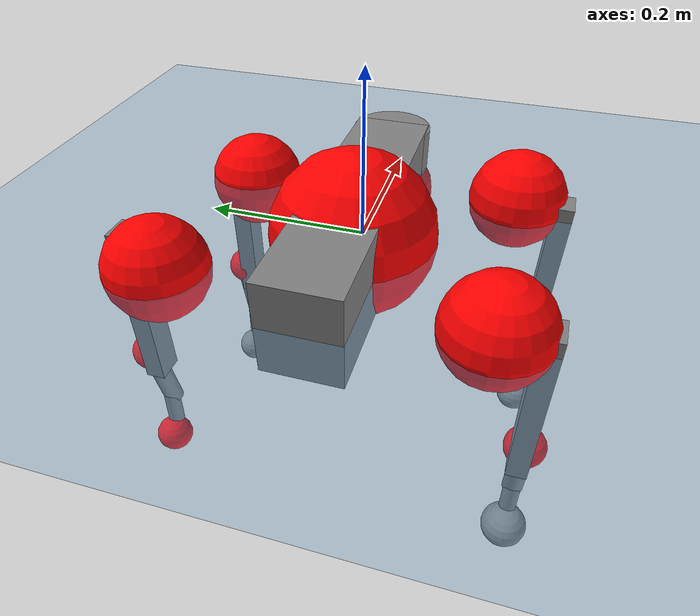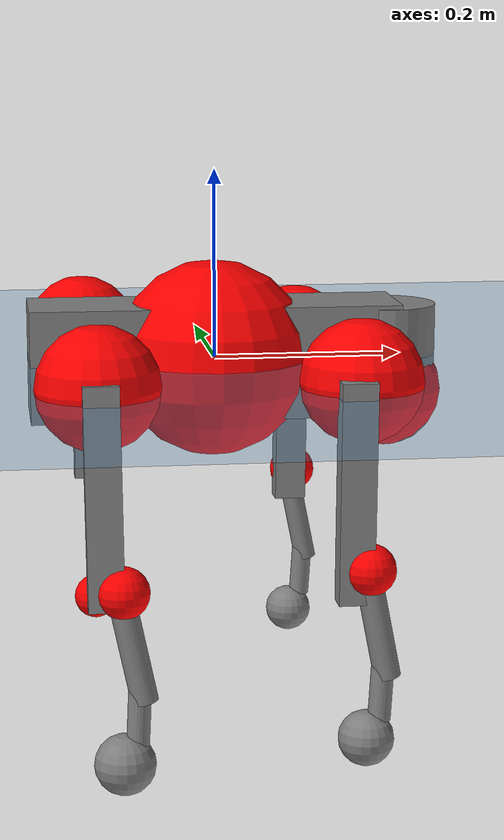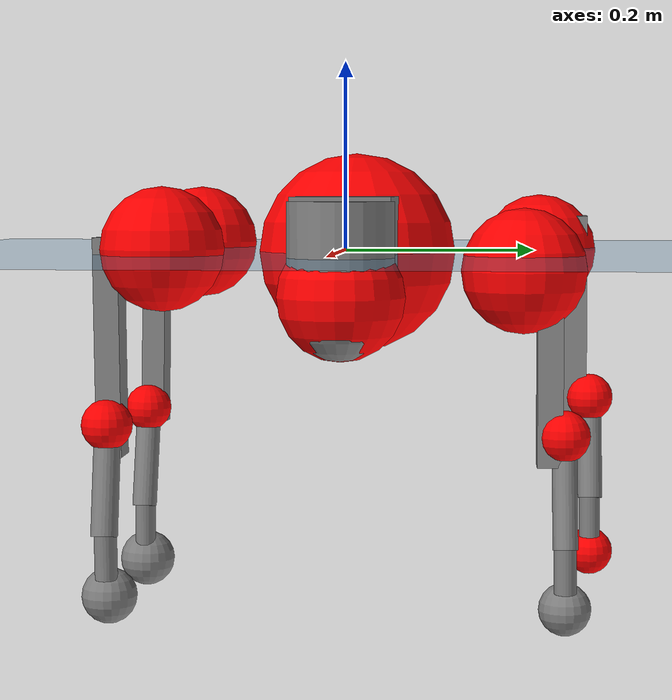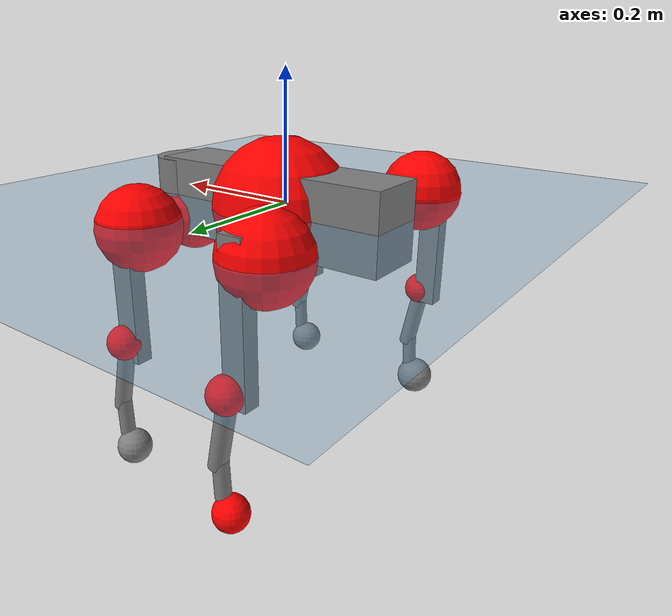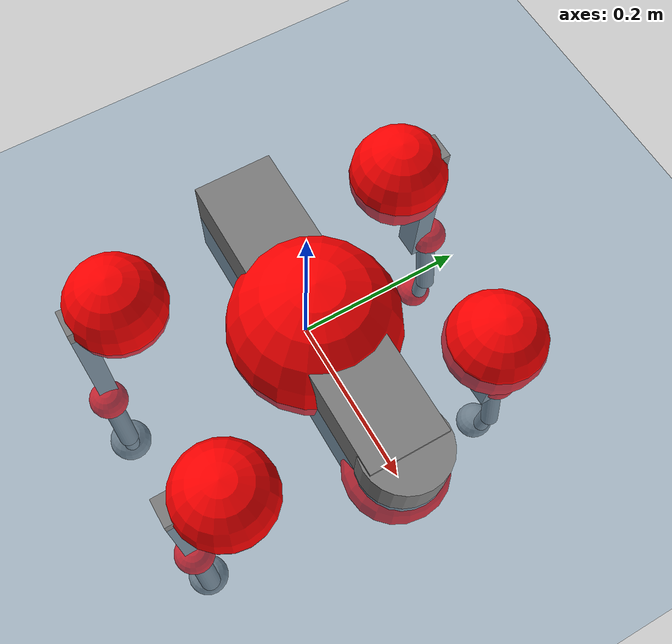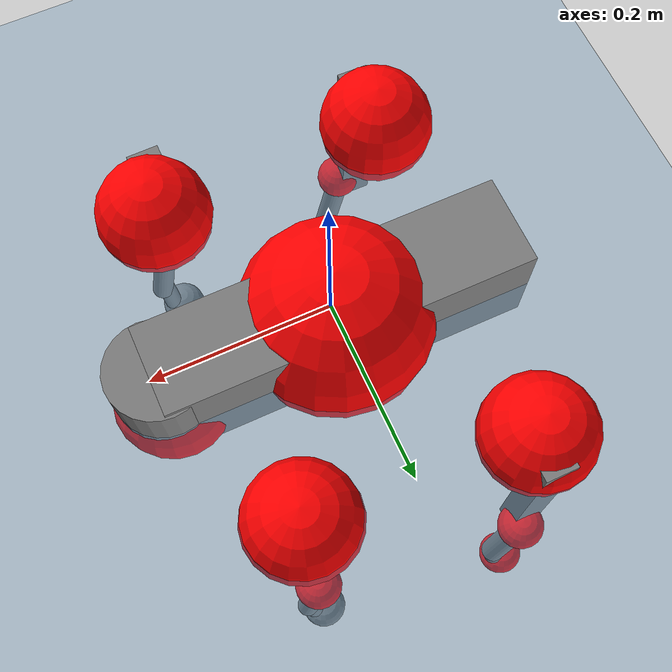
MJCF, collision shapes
<mujoco model="go2">
  <compiler angle="radian" assetdir="assets" balanceinertia="true" inertiafromgeom="false"/>

  <option timestep="0.005" density="1.2" viscosity="2e-05"/>

  <size nkey="1"/>

  <visual>
    <quality shadowsize="8192"/>
    <map shadowclip="0.5"/>
  </visual>

  <default>
    <default class="/">
      <geom contype="0" conaffinity="0" group="1" solref="-1000 -80"/>
      <site size="0.01 0.005 0.005" group="5"/>
      <general forcelimited="true" biastype="affine" gainprm="20" biasprm="0 -20 -0.5"/>
      <default class="go2">
        <joint armature="0.01" damping="0.01" frictionloss="0.2"/>
        <geom condim="1" margin="0.001"/>
        <default class="visual">
          <geom type="mesh" group="2"/>
        </default>
        <default class="collision">
          <geom group="3"/>
          <default class="foot">
            <geom size="0.022 0 0" condim="6" priority="1" friction="0.8 0.02 0.01" solimp="0.015 1 0.022"/>
          </default>
        </default>
        <default class="reward_collision_sphere">
          <geom group="5" rgba="1 0 0 1"/>
        </default>
      </default>
    </default>
  </default>

  <asset>
    <texture type="skybox" colorspace="auto" name="//unnamed_texture_0" builtin="gradient" rgb1="0.95 0.95 0.95" rgb2="0.95 0.95 0.95" width="100" height="600"/>
    <texture type="2d" colorspace="auto" name="texplane" builtin="checker" rgb1="0.345 0.575 0.748" rgb2="0.345 0.575 0.748" markrgb="1 1 1" width="512" height="512"/>
    <material name="MatPlane" class="/" texture="texplane" texuniform="true" texrepeat="2 2" specular="0.9"/>
    <material name="metal" class="/" rgba="0.9 0.95 0.95 1"/>
    <material name="black" class="/" rgba="0 0 0 1"/>
    <material name="white" class="/"/>
    <material name="gray" class="/" rgba="0.671705 0.692426 0.77427 1"/>
    <mesh name="base_0" class="/" file="base_0.obj"/>
    <mesh name="base_1" class="/" file="base_1.obj"/>
    <mesh name="base_2" class="/" file="base_2.obj"/>
    <mesh name="base_3" class="/" file="base_3.obj"/>
    <mesh name="base_4" class="/" file="base_4.obj"/>
    <mesh name="hip_0" class="/" file="hip_0.obj"/>
    <mesh name="hip_1" class="/" file="hip_1.obj"/>
    <mesh name="thigh_0" class="/" file="thigh_0.obj"/>
    <mesh name="thigh_1" class="/" file="thigh_1.obj"/>
    <mesh name="thigh_mirror_0" class="/" file="thigh_mirror_0.obj"/>
    <mesh name="thigh_mirror_1" class="/" file="thigh_mirror_1.obj"/>
    <mesh name="calf_0" class="/" file="calf_0.obj"/>
    <mesh name="calf_1" class="/" file="calf_1.obj"/>
    <mesh name="calf_mirror_0" class="/" file="calf_mirror_0.obj"/>
    <mesh name="calf_mirror_1" class="/" file="calf_mirror_1.obj"/>
    <mesh name="foot" class="/" file="foot.obj"/>
  </asset>

  <worldbody>
    <geom name="floor" class="/" size="100 100 0.125" type="plane" group="0" material="MatPlane"/>
    <light name="toplight_shadow" class="/" pos="0 0 5" dir="0.0990148 0.0990148 -0.990148" type="directional" ambient="0.04 0.04 0.04" diffuse="0.55 0.55 0.55" specular="0.12 0.12 0.12"/>
    <light name="toplight_fill" class="/" pos="0 0 5" dir="0.0990148 0.0990148 -0.990148" type="directional" castshadow="false" ambient="0.04 0.04 0.04" diffuse="0.3 0.3 0.3" specular="0.08 0.08 0.08"/>
    <body name="trunk" childclass="go2" pos="-0.000388489 0.0119098 -0.00225241" quat="1 -4.55572e-05 6.76075e-05 4.4746e-05">
      <inertial pos="0.00823051 0.0126639 -0.00318151" quat="0.0389025 0.758664 0.0245575 0.649855" mass="8.11056" diaginertia="0.0152287 1.39328 0.00938251"/>
      <joint name="//unnamed_joint_0" type="free" armature="0" damping="0" frictionloss="0"/>
      <geom name="//unnamed_geom_1" class="visual" material="black" mesh="base_0"/>
      <geom name="//unnamed_geom_2" class="visual" material="black" mesh="base_1"/>
      <geom name="//unnamed_geom_3" class="visual" material="black" mesh="base_2"/>
      <geom name="//unnamed_geom_4" class="visual" material="white" mesh="base_3"/>
      <geom name="//unnamed_geom_5" class="visual" material="gray" mesh="base_4"/>
      <geom name="trunk_1" class="collision" size="0.197451 0.049074 0.0598335" type="box"/>
      <geom name="trunk_2" class="collision" size="0.0524855 0.047237" pos="0.188744 0 0.00826483" type="cylinder"/>
      <geom name="trunk_3" class="collision" size="0.0493364" pos="0.194042 0 -0.049589"/>
      <geom name="//unnamed_geom_9" class="reward_collision_sphere" size="0.104971"/>
      <geom name="//unnamed_geom_10" class="reward_collision_sphere" size="0.0629826" pos="0.185432 0 -0.0371917"/>
      <site name="imu" pos="-0.0747982 -0.0459345 0.0944449" size="0.0104971"/>
      <camera name="track" pos="0 -3.32078 0" quat="0.707107 0.707107 0 0" mode="trackcom"/>
      <camera name="ego_camera" pos="0.206625 0 0.0371917" quat="-0.5 -0.5 0.5 0.5"/>
      <body name="FL_hip" pos="0.117735 0.061082 -0.0138695" quat="0.999981 -0.00118802 0.00205923 0.00569884">
        <inertial pos="-0.000179347 0.00392684 -0.00846189" quat="0.49849 0.488429 0.511095 0.501723" mass="0.908104" diaginertia="0.000110416 0.00821515 0.000177451"/>
        <joint name="FL_hip_joint" pos="0 0 0" axis="0.999876 0.0143824 0.00641844" range="-1.37614 0.872311" armature="0.0118423" damping="0.0672336" frictionloss="0.0998832"/>
        <geom name="//unnamed_geom_11" class="visual" material="metal" mesh="hip_0"/>
        <geom name="//unnamed_geom_12" class="visual" material="gray" mesh="hip_1"/>
        <geom name="//unnamed_geom_13" class="collision" size="0.0482867 0.0209942" pos="0 0.132831 0" quat="0.707107 0.707107 0 0" type="cylinder"/>
        <geom name="//unnamed_geom_14" class="reward_collision_sphere" size="0.0629826" pos="0 0.116227 0"/>
        <body name="FL_thigh" pos="0.000244185 0.142352 0.00414782" quat="0.999985 0.00230315 0.00274114 0.00416477">
          <inertial pos="-0.013453 -0.0466711 -0.0304333" quat="0.835599 0.0888103 0.0451675 0.540229" mass="1.32909" diaginertia="0.000722068 0.0731788 0.000356916"/>
          <joint name="FL_thigh_joint" pos="0 0 0" axis="-0.0573393 0.99815 0.0202399" stiffness="0.00136171" range="-1.73194 3.19958" armature="0.00392537" damping="0" frictionloss="0.139211"/>
          <geom name="//unnamed_geom_15" class="visual" material="metal" mesh="thigh_0"/>
          <geom name="//unnamed_geom_16" class="visual" material="gray" mesh="thigh_1"/>
          <geom name="//unnamed_geom_17" class="collision" size="0.111794 0.012859 0.0178451" pos="0 0 -0.0880204" quat="0.707107 0 0.707107 0" type="box"/>
          <body name="FL_calf" pos="0.00599887 0.014401 -0.169323" quat="0.99999 0.00424682 0.000235266 0.000995444">
            <inertial pos="-0.00603801 -0.000566406 -0.101176" quat="0.709896 3.59952e-05 -0.00345679 0.704298" mass="0.290458" diaginertia="0.000218418 0.0150809 2.44945e-05"/>
            <joint name="FL_calf_joint" pos="0 0 0" axis="-0.00387439 0.999992 -0.000916092" stiffness="0.00187601" range="-2.4136 -0.837769" armature="0.0154359" damping="0.0103331" frictionloss="0.201905"/>
            <geom name="//unnamed_geom_18" class="visual" material="gray" mesh="calf_0"/>
            <geom name="//unnamed_geom_19" class="visual" material="black" mesh="calf_1"/>
            <geom name="FL_calf0" class="collision" size="0.0125965 0.0629826" pos="0.00529807 0 -0.049589" quat="0.994493 0 -0.104807 0" type="cylinder"/>
            <geom name="//unnamed_geom_21" class="collision" size="0.0115468 0.0341156" pos="0.0132452 0 -0.122319" quat="0.999688 0 0.0249974 0" type="cylinder"/>
            <geom name="//unnamed_geom_22" class="visual" pos="0 0 -0.176041" quat="1 0 0 0" material="black" mesh="foot"/>
            <geom name="FL_foot" class="foot" size="0.0267036" pos="-0.00132452 0 -0.176041"/>
            <geom name="//unnamed_geom_24" class="reward_collision_sphere" size="0.0262428"/>
            <geom name="//unnamed_geom_25" class="reward_collision_sphere" size="0.0262428" pos="-0.00132452 0 -0.176041"/>
            <site name="FL_foot" class="foot" pos="-0.00132452 0 -0.176041" size="0.0104971"/>
          </body>
        </body>
      </body>
      <body name="FR_hip" pos="0.128147 -0.0691382 0.00737048" quat="0.999999 0.00094495 -0.000227262 0.000789022">
        <inertial pos="0.00303496 -0.00781048 -0.00486048" quat="0.491408 0.50724 0.500575 0.500649" mass="0.89171" diaginertia="0.000117587 0.00883555 0.000152542"/>
        <joint name="FR_hip_joint" pos="0 0 0" axis="0.998675 -0.0020807 0.0514217" stiffness="0.0324345" range="-1.03057 1.06474" armature="0.00788096" damping="0" frictionloss="0.142558"/>
        <geom name="//unnamed_geom_26" class="visual" pos="0 7.26465e-09 3.11596e-07" quat="4.63268e-05 1 0 0" material="metal" mesh="hip_0"/>
        <geom name="//unnamed_geom_27" class="visual" pos="0 1.17769e-08 -7.70696e-07" quat="4.63268e-05 1 0 0" material="gray" mesh="hip_1"/>
        <geom name="//unnamed_geom_28" class="collision" size="0.0482867 0.0209942" pos="0 -0.132831 0" quat="0.707107 0.707107 0 0" type="cylinder"/>
        <geom name="//unnamed_geom_29" class="reward_collision_sphere" size="0.0629826" pos="0 -0.116227 0"/>
        <body name="FR_thigh" pos="-0.0143792 -0.174511 -0.0123151" quat="0.999991 0.00338708 0.00165353 0.00169444">
          <inertial pos="0.00581565 0.0530124 -0.0253688" quat="0.567809 -0.0535464 0.055987 0.819506" mass="0.966359" diaginertia="0.000621016 0.0623471 0.000309554"/>
          <joint name="FR_thigh_joint" pos="0 0 0" axis="-0.0131151 -0.999913 -0.00111123" stiffness="0.0329153" range="-3.19569 1.58453" armature="0.00910815" damping="0" frictionloss="0.213353"/>
          <geom name="//unnamed_geom_30" class="visual" material="metal" mesh="thigh_mirror_0"/>
          <geom name="//unnamed_geom_31" class="visual" material="gray" mesh="thigh_mirror_1"/>
          <geom name="//unnamed_geom_32" class="collision" size="0.111794 0.012859 0.0178451" pos="0 0 -0.0880204" quat="0.707107 0 0.707107 0" type="box"/>
          <body name="FR_calf" pos="0.0149548 -0.0018931 -0.166297" quat="0.999978 -0.00314216 -5.46894e-05 -0.00583843">
            <inertial pos="-0.00257879 0.00132609 -0.127579" quat="0.70879 0.0435008 0.00519004 0.704058" mass="0.273561" diaginertia="0.000180296 0.0187642 1.91049e-05"/>
            <joint name="FR_calf_joint" pos="0 0 0" axis="-0.0735081 -0.996866 0.0292252" stiffness="0.0506423" range="0.770613 2.7306" armature="0.00349902" damping="0" frictionloss="0.347674"/>
            <geom name="//unnamed_geom_33" class="visual" material="gray" mesh="calf_mirror_0"/>
            <geom name="//unnamed_geom_34" class="visual" material="black" mesh="calf_mirror_1"/>
            <geom name="FR_calf0" class="collision" size="0.0136462 0.0629826" pos="0.00662259 0 -0.049589" quat="0.995004 0 -0.0998334 0" type="cylinder"/>
            <geom name="//unnamed_geom_36" class="collision" size="0.0115468 0.0341156" pos="0.0132452 0 -0.122319" quat="0.999688 0 0.0249974 0" type="cylinder"/>
            <geom name="//unnamed_geom_37" class="visual" pos="0 0 -0.176041" quat="1 0 0 0" material="black" mesh="foot"/>
            <geom name="FR_foot" class="foot" size="0.0284575" pos="-0.00132452 0 -0.176041"/>
            <geom name="//unnamed_geom_39" class="reward_collision_sphere" size="0.0262428"/>
            <geom name="//unnamed_geom_40" class="reward_collision_sphere" size="0.0262428" pos="-0.00132452 0 -0.176041"/>
            <site name="FR_foot" class="foot" pos="-0.00132452 0 -0.176041" size="0.0104971"/>
          </body>
        </body>
      </body>
      <body name="RL_hip" pos="-0.130603 0.08021 -0.00247158" quat="0.999995 0.00252613 0.00170732 0.000908127">
        <inertial pos="0.00361719 0.0158478 -0.0089906" quat="0.521551 0.478251 0.506207 0.492965" mass="0.661907" diaginertia="0.000103087 0.00683843 0.000167601"/>
        <joint name="RL_hip_joint" pos="0 0 0" axis="-0.999126 -0.0268685 -0.0320057" stiffness="0.0247201" range="-1.14072 1.19234" armature="0.0103798" damping="0.00456625" frictionloss="0.166865"/>
        <geom name="//unnamed_geom_41" class="visual" pos="1.43065e-09 0 2.80441e-07" quat="4.63268e-05 0 1 0" material="metal" mesh="hip_0"/>
        <geom name="//unnamed_geom_42" class="visual" pos="2.31926e-09 0 2.48711e-07" quat="4.63268e-05 0 1 0" material="gray" mesh="hip_1"/>
        <geom name="//unnamed_geom_43" class="collision" size="0.0482867 0.0209942" pos="0 0.132831 0" quat="0.707107 0.707107 0 0" type="cylinder"/>
        <geom name="//unnamed_geom_44" class="reward_collision_sphere" size="0.0629826" pos="0 0.116227 0"/>
        <body name="RL_thigh" pos="0.00985288 0.156298 0.01518" quat="0.999998 -0.000703955 0.00178357 0.00112917">
          <inertial pos="-0.00219881 -0.0347014 -0.0120902" quat="0.848084 0.0495848 -0.0166892 0.527273" mass="0.971185" diaginertia="0.0007392 0.0613192 0.00031916"/>
          <joint name="RL_thigh_joint" pos="0 0 0" axis="-0.00432055 0.999983 -0.00381384" stiffness="0.0113801" range="-0.286832 4.3406" armature="0.0137599" damping="0.072731" frictionloss="0.234569"/>
          <geom name="//unnamed_geom_45" class="visual" material="metal" mesh="thigh_0"/>
          <geom name="//unnamed_geom_46" class="visual" material="gray" mesh="thigh_1"/>
          <geom name="//unnamed_geom_47" class="collision" size="0.111794 0.012859 0.0178451" pos="0 0 -0.0880204" quat="0.707107 0 0.707107 0" type="box"/>
          <body name="RL_calf" pos="0.00974008 0.0162085 -0.180374" quat="0.999997 0.00232838 0.000402835 0.000586893">
            <inertial pos="0.00639057 -0.000496016 -0.113713" quat="0.715356 0.00458369 -0.00453123 0.698731" mass="0.215659" diaginertia="0.000139018 0.0165534 1.82186e-05"/>
            <joint name="RL_calf_joint" pos="0 0 0" axis="0.00637387 0.998609 0.0523382" range="-3.039 -0.604031" armature="0.0102315" damping="0.0538369" frictionloss="0.214072"/>
            <geom name="//unnamed_geom_48" class="visual" material="gray" mesh="calf_0"/>
            <geom name="//unnamed_geom_49" class="visual" material="black" mesh="calf_1"/>
            <geom name="RL_calf0" class="collision" size="0.0136462 0.0629826" pos="0.00662259 0 -0.049589" quat="0.995004 0 -0.0998334 0" type="cylinder"/>
            <geom name="//unnamed_geom_51" class="collision" size="0.0115468 0.0341156" pos="0.0132452 0 -0.122319" quat="0.999688 0 0.0249974 0" type="cylinder"/>
            <geom name="//unnamed_geom_52" class="visual" pos="0 0 -0.176041" quat="1 0 0 0" material="black" mesh="foot"/>
            <geom name="RL_foot" class="foot" size="0.0172175" pos="-0.00132452 0 -0.176041"/>
            <geom name="//unnamed_geom_54" class="reward_collision_sphere" size="0.0262428"/>
            <geom name="//unnamed_geom_55" class="reward_collision_sphere" size="0.0262428" pos="-0.00132452 0 -0.176041"/>
            <site name="RL_foot" class="foot" pos="-0.00132452 0 -0.176041" size="0.0104971"/>
          </body>
        </body>
      </body>
      <body name="RR_hip" pos="-0.13404 -0.0742077 0.00657436" quat="0.999978 -0.00146788 -0.00479145 -0.00429992">
        <inertial pos="-0.0016696 -0.0162646 0.0102228" quat="0.487953 0.498259 0.517737 0.495569" mass="0.682375" diaginertia="8.51269e-05 0.00608997 0.000134185"/>
        <joint name="RR_hip_joint" pos="0 0 0" axis="-0.99769 0.0560872 0.0383241" range="-0.988087 1.33401" armature="0.0101387" damping="0.0360419" frictionloss="0.182847"/>
        <geom name="//unnamed_geom_56" class="visual" pos="-1.3961e-09 7.26465e-09 -3.11553e-08" quat="2.14617e-09 4.63268e-05 4.63268e-05 -1" material="metal" mesh="hip_0"/>
        <geom name="//unnamed_geom_57" class="visual" pos="-2.40473e-09 1.17769e-08 1.01941e-06" quat="2.14617e-09 4.63268e-05 4.63268e-05 -1" material="gray" mesh="hip_1"/>
        <geom name="//unnamed_geom_58" class="collision" size="0.0482867 0.0209942" pos="0 -0.132831 0" quat="0.707107 0.707107 0 0" type="cylinder"/>
        <geom name="//unnamed_geom_59" class="reward_collision_sphere" size="0.0629826" pos="0 -0.116227 0"/>
        <body name="RR_thigh" pos="-0.000110635 -0.169541 -0.00944332" quat="0.999976 -0.00632105 -0.00118625 -0.00263967">
          <inertial pos="-0.00241192 0.051106 -0.036524" quat="0.565614 -0.00568546 0.0878989 0.819953" mass="1.46694" diaginertia="0.000825712 0.081574 0.000379312"/>
          <joint name="RR_thigh_joint" pos="0 0 0" axis="0.0717917 -0.99732 0.0141016" stiffness="0.0333643" range="-4.61017 0.342373" armature="0.0111348" damping="0" frictionloss="0.169337"/>
          <geom name="//unnamed_geom_60" class="visual" material="metal" mesh="thigh_mirror_0"/>
          <geom name="//unnamed_geom_61" class="visual" material="gray" mesh="thigh_mirror_1"/>
          <geom name="//unnamed_geom_62" class="collision" size="0.111794 0.012859 0.0178451" pos="0 0 -0.0880204" quat="0.707107 0 0.707107 0" type="box"/>
          <body name="RR_calf" pos="0.0169869 -0.00487955 -0.182307" quat="0.999992 0.000490231 0.00343128 0.00191494">
            <inertial pos="-0.012317 0.0014918 -0.111324" quat="0.694686 -0.0274385 -0.0210958 0.71848" mass="0.284447" diaginertia="0.000155698 0.0197225 1.93488e-05"/>
            <joint name="RR_calf_joint" pos="0 0 0" axis="0.0682597 -0.997289 0.0274881" stiffness="0.0426265" range="1.09723 2.43253" armature="0.0177707" damping="0.00158673" frictionloss="0.208529"/>
            <geom name="//unnamed_geom_63" class="visual" material="gray" mesh="calf_mirror_0"/>
            <geom name="//unnamed_geom_64" class="visual" material="black" mesh="calf_mirror_1"/>
            <geom name="RR_calf0" class="collision" size="0.0136462 0.0629826" pos="0.00662259 0 -0.049589" quat="0.995004 0 -0.0998334 0" type="cylinder"/>
            <geom name="//unnamed_geom_66" class="collision" size="0.0115468 0.0341156" pos="0.0132452 0 -0.122319" quat="0.999688 0 0.0249974 0" type="cylinder"/>
            <geom name="//unnamed_geom_67" class="visual" pos="0 0 -0.176041" quat="1 0 0 0" material="black" mesh="foot"/>
            <geom name="RR_foot" class="foot" size="0.031044" pos="-0.00132452 0 -0.176041"/>
            <geom name="//unnamed_geom_69" class="reward_collision_sphere" size="0.0262428"/>
            <geom name="//unnamed_geom_70" class="reward_collision_sphere" size="0.0262428" pos="-0.00132452 0 -0.176041"/>
            <site name="RR_foot" class="foot" pos="-0.00132452 0 -0.176041" size="0.0104971"/>
          </body>
        </body>
      </body>
    </body>
  </worldbody>

  <contact>
    <pair class="/" geom1="floor" geom2="FL_foot" name="//unnamed_contact_0"/>
    <pair class="/" geom1="floor" geom2="FR_foot" name="//unnamed_contact_1"/>
    <pair class="/" geom1="floor" geom2="RL_foot" name="//unnamed_contact_2"/>
    <pair class="/" geom1="floor" geom2="RR_foot" name="//unnamed_contact_3"/>
  </contact>

  <actuator>
    <general name="FL_hip" class="/" joint="FL_hip_joint" forcerange="-9.6539 9.6539" gainprm="13.3152" biasprm="0 -13.3152 -0.436581"/>
    <general name="FL_thigh" class="/" joint="FL_thigh_joint" forcerange="-34.7195 34.7195" gainprm="13.3152" biasprm="0 -13.3152 -0.436581"/>
    <general name="FL_calf" class="/" joint="FL_calf_joint" forcerange="-58.0792 58.0792" gainprm="13.3152" biasprm="0 -13.3152 -0.436581"/>
    <general name="FR_hip" class="/" joint="FR_hip_joint" forcerange="-11.2162 11.2162" gainprm="13.3152" biasprm="0 -13.3152 -0.436581"/>
    <general name="FR_thigh" class="/" joint="FR_thigh_joint" forcerange="-11.1827 11.1827" gainprm="13.3152" biasprm="0 -13.3152 -0.436581"/>
    <general name="FR_calf" class="/" joint="FR_calf_joint" forcerange="-29.1692 29.1692" gainprm="13.3152" biasprm="0 -13.3152 -0.436581"/>
    <general name="RL_hip" class="/" joint="RL_hip_joint" forcerange="-29.2765 29.2765" gainprm="13.3152" biasprm="0 -13.3152 -0.436581"/>
    <general name="RL_thigh" class="/" joint="RL_thigh_joint" forcerange="-22.1735 22.1735" gainprm="13.3152" biasprm="0 -13.3152 -0.436581"/>
    <general name="RL_calf" class="/" joint="RL_calf_joint" forcerange="-64.5511 64.5511" gainprm="13.3152" biasprm="0 -13.3152 -0.436581"/>
    <general name="RR_hip" class="/" joint="RR_hip_joint" forcerange="-39.2878 39.2878" gainprm="13.3152" biasprm="0 -13.3152 -0.436581"/>
    <general name="RR_thigh" class="/" joint="RR_thigh_joint" forcerange="-27.7677 27.7677" gainprm="13.3152" biasprm="0 -13.3152 -0.436581"/>
    <general name="RR_calf" class="/" joint="RR_calf_joint" forcerange="-50.4553 50.4553" gainprm="13.3152" biasprm="0 -13.3152 -0.436581"/>
  </actuator>

  <sensor>
    <gyro site="imu" name="imu_angular_velocity"/>
    <velocimeter site="imu" name="imu_linear_velocity"/>
    <framelinvel objtype="site" objname="FL_foot" name="FL_foot_global_linear_velocity"/>
    <framelinvel objtype="site" objname="FR_foot" name="FR_foot_global_linear_velocity"/>
    <framelinvel objtype="site" objname="RL_foot" name="RL_foot_global_linear_velocity"/>
    <framelinvel objtype="site" objname="RR_foot" name="RR_foot_global_linear_velocity"/>
  </sensor>

  <keyframe>
    <key name="home" qpos="0 0 0.325 1 0 0 0 0.1 0.8 -1.5 -0.1 -0.8 1.5 -0.1 0.8 -1.5 0.1 -0.8 1.5"/>
  </keyframe>
</mujoco>
